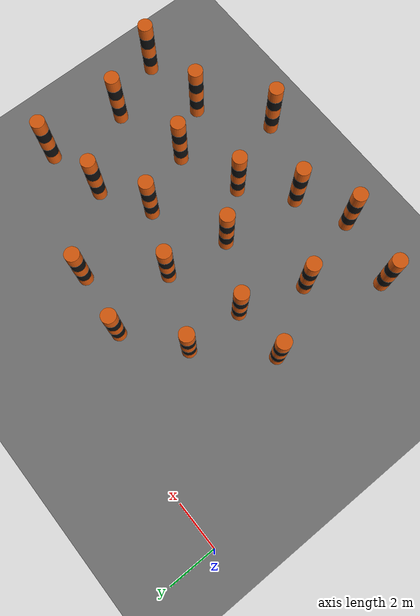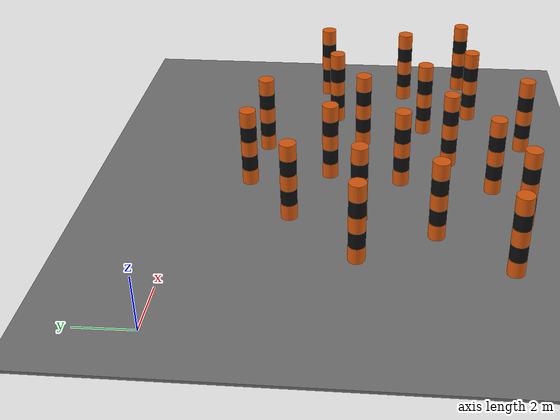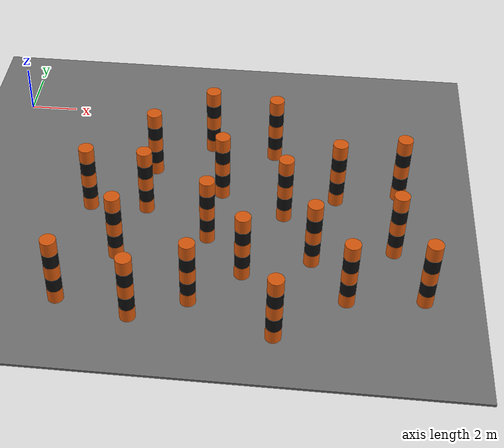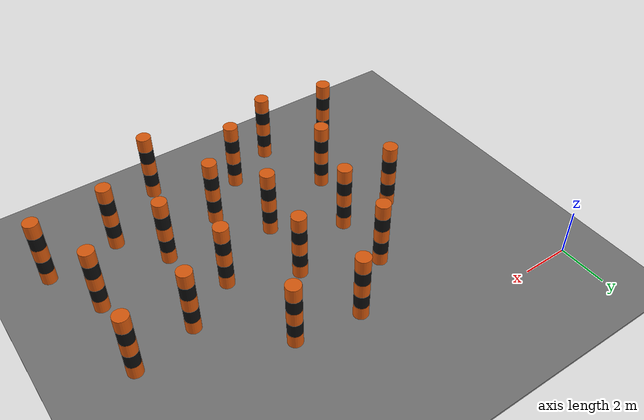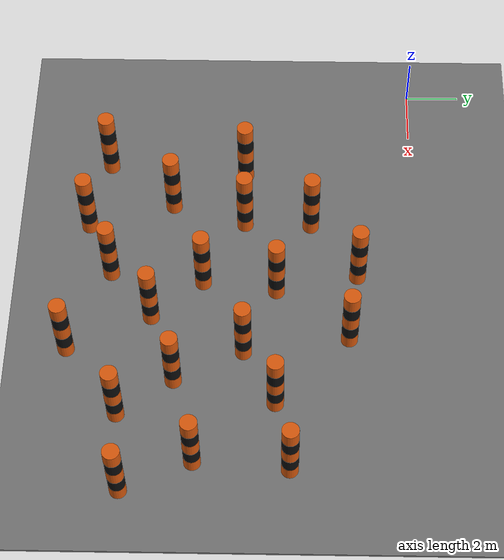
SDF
<sdf version="1.6">
 <world name="medium_forest_striped_poles_passable_0p10_per_m2">
  <model name="ground">
   <static>true</static>
   <pose>2 0 -0.05 0 0 0</pose>
   <link name="link">
    <collision name="collision">
     <geometry><box><size>44 37 0.1</size></box></geometry>
     <surface><friction><ode><mu>1.0</mu><mu2>1.0</mu2></ode></friction></surface>
    </collision>
    <visual name="visual">
     <geometry><box><size>44 37 0.1</size></box></geometry>
     <material>
      <ambient>0.45 0.45 0.45 1</ambient>
      <diffuse>0.45 0.45 0.45 1</diffuse>
      <specular>0.02 0.02 0.02 1</specular>
     </material>
    </visual>
   </link>
  </model>
  <model name="passable_striped_pole_001">
   <static>true</static>
   <pose>6.378 -12.090 0 0 0 0</pose>
   <link name="link">
    <collision name="collision">
     <pose>0 0 1.5 0 0 0</pose>
     <geometry><cylinder><radius>0.30</radius><length>3.0</length></cylinder></geometry>
     <surface>
      <contact><ode><kp>1000000</kp><kd>100</kd><max_vel>0.01</max_vel><min_depth>0.001</min_depth></ode></contact>
      <friction><ode><mu>1.0</mu><mu2>1.0</mu2></ode></friction>
     </surface>
    </collision>
    <visual name="band_1">
     <pose>0 0 0.3 0 0 0</pose>
     <geometry><cylinder><radius>0.30</radius><length>0.6</length></cylinder></geometry>
     <material>
      <ambient>0.85 0.35 0.05 1</ambient>
      <diffuse>0.85 0.35 0.05 1</diffuse>
      <specular>0.02 0.02 0.02 1</specular>
     </material>
    </visual>
    <visual name="band_2">
     <pose>0 0 0.9 0 0 0</pose>
     <geometry><cylinder><radius>0.30</radius><length>0.6</length></cylinder></geometry>
     <material>
      <ambient>0.05 0.05 0.05 1</ambient>
      <diffuse>0.05 0.05 0.05 1</diffuse>
      <specular>0.02 0.02 0.02 1</specular>
     </material>
    </visual>
    <visual name="band_3">
     <pose>0 0 1.5 0 0 0</pose>
     <geometry><cylinder><radius>0.30</radius><length>0.6</length></cylinder></geometry>
     <material>
      <ambient>0.85 0.35 0.05 1</ambient>
      <diffuse>0.85 0.35 0.05 1</diffuse>
      <specular>0.02 0.02 0.02 1</specular>
     </material>
    </visual>
    <visual name="band_4">
     <pose>0 0 2.1 0 0 0</pose>
     <geometry><cylinder><radius>0.30</radius><length>0.6</length></cylinder></geometry>
     <material>
      <ambient>0.05 0.05 0.05 1</ambient>
      <diffuse>0.05 0.05 0.05 1</diffuse>
      <specular>0.02 0.02 0.02 1</specular>
     </material>
    </visual>
    <visual name="band_5">
     <pose>0 0 2.7 0 0 0</pose>
     <geometry><cylinder><radius>0.30</radius><length>0.6</length></cylinder></geometry>
     <material>
      <ambient>0.85 0.35 0.05 1</ambient>
      <diffuse>0.85 0.35 0.05 1</diffuse>
      <specular>0.02 0.02 0.02 1</specular>
     </material>
    </visual>
   </link>
  </model>
  <model name="passable_striped_pole_004">
   <static>true</static>
   <pose>14.314 -10.579 0 0 0 0</pose>
   <link name="link">
    <collision name="collision">
     <pose>0 0 1.5 0 0 0</pose>
     <geometry><cylinder><radius>0.30</radius><length>3.0</length></cylinder></geometry>
     <surface>
      <contact><ode><kp>1000000</kp><kd>100</kd><max_vel>0.01</max_vel><min_depth>0.001</min_depth></ode></contact>
      <friction><ode><mu>1.0</mu><mu2>1.0</mu2></ode></friction>
     </surface>
    </collision>
    <visual name="band_1">
     <pose>0 0 0.3 0 0 0</pose>
     <geometry><cylinder><radius>0.30</radius><length>0.6</length></cylinder></geometry>
     <material>
      <ambient>0.85 0.35 0.05 1</ambient>
      <diffuse>0.85 0.35 0.05 1</diffuse>
      <specular>0.02 0.02 0.02 1</specular>
     </material>
    </visual>
    <visual name="band_2">
     <pose>0 0 0.9 0 0 0</pose>
     <geometry><cylinder><radius>0.30</radius><length>0.6</length></cylinder></geometry>
     <material>
      <ambient>0.05 0.05 0.05 1</ambient>
      <diffuse>0.05 0.05 0.05 1</diffuse>
      <specular>0.02 0.02 0.02 1</specular>
     </material>
    </visual>
    <visual name="band_3">
     <pose>0 0 1.5 0 0 0</pose>
     <geometry><cylinder><radius>0.30</radius><length>0.6</length></cylinder></geometry>
     <material>
      <ambient>0.85 0.35 0.05 1</ambient>
      <diffuse>0.85 0.35 0.05 1</diffuse>
      <specular>0.02 0.02 0.02 1</specular>
     </material>
    </visual>
    <visual name="band_4">
     <pose>0 0 2.1 0 0 0</pose>
     <geometry><cylinder><radius>0.30</radius><length>0.6</length></cylinder></geometry>
     <material>
      <ambient>0.05 0.05 0.05 1</ambient>
      <diffuse>0.05 0.05 0.05 1</diffuse>
      <specular>0.02 0.02 0.02 1</specular>
     </material>
    </visual>
    <visual name="band_5">
     <pose>0 0 2.7 0 0 0</pose>
     <geometry><cylinder><radius>0.30</radius><length>0.6</length></cylinder></geometry>
     <material>
      <ambient>0.85 0.35 0.05 1</ambient>
      <diffuse>0.85 0.35 0.05 1</diffuse>
      <specular>0.02 0.02 0.02 1</specular>
     </material>
    </visual>
   </link>
  </model>
  <model name="passable_striped_pole_009">
   <static>true</static>
   <pose>11.716 -12.541 0 0 0 0</pose>
   <link name="link">
    <collision name="collision">
     <pose>0 0 1.5 0 0 0</pose>
     <geometry><cylinder><radius>0.30</radius><length>3.0</length></cylinder></geometry>
     <surface>
      <contact><ode><kp>1000000</kp><kd>100</kd><max_vel>0.01</max_vel><min_depth>0.001</min_depth></ode></contact>
      <friction><ode><mu>1.0</mu><mu2>1.0</mu2></ode></friction>
     </surface>
    </collision>
    <visual name="band_1">
     <pose>0 0 0.3 0 0 0</pose>
     <geometry><cylinder><radius>0.30</radius><length>0.6</length></cylinder></geometry>
     <material>
      <ambient>0.85 0.35 0.05 1</ambient>
      <diffuse>0.85 0.35 0.05 1</diffuse>
      <specular>0.02 0.02 0.02 1</specular>
     </material>
    </visual>
    <visual name="band_2">
     <pose>0 0 0.9 0 0 0</pose>
     <geometry><cylinder><radius>0.30</radius><length>0.6</length></cylinder></geometry>
     <material>
      <ambient>0.05 0.05 0.05 1</ambient>
      <diffuse>0.05 0.05 0.05 1</diffuse>
      <specular>0.02 0.02 0.02 1</specular>
     </material>
    </visual>
    <visual name="band_3">
     <pose>0 0 1.5 0 0 0</pose>
     <geometry><cylinder><radius>0.30</radius><length>0.6</length></cylinder></geometry>
     <material>
      <ambient>0.85 0.35 0.05 1</ambient>
      <diffuse>0.85 0.35 0.05 1</diffuse>
      <specular>0.02 0.02 0.02 1</specular>
     </material>
    </visual>
    <visual name="band_4">
     <pose>0 0 2.1 0 0 0</pose>
     <geometry><cylinder><radius>0.30</radius><length>0.6</length></cylinder></geometry>
     <material>
      <ambient>0.05 0.05 0.05 1</ambient>
      <diffuse>0.05 0.05 0.05 1</diffuse>
      <specular>0.02 0.02 0.02 1</specular>
     </material>
    </visual>
    <visual name="band_5">
     <pose>0 0 2.7 0 0 0</pose>
     <geometry><cylinder><radius>0.30</radius><length>0.6</length></cylinder></geometry>
     <material>
      <ambient>0.85 0.35 0.05 1</ambient>
      <diffuse>0.85 0.35 0.05 1</diffuse>
      <specular>0.02 0.02 0.02 1</specular>
     </material>
    </visual>
   </link>
  </model>
  <model name="passable_striped_pole_012">
   <static>true</static>
   <pose>16.356 -4.487 0 0 0 0</pose>
   <link name="link">
    <collision name="collision">
     <pose>0 0 1.5 0 0 0</pose>
     <geometry><cylinder><radius>0.30</radius><length>3.0</length></cylinder></geometry>
     <surface>
      <contact><ode><kp>1000000</kp><kd>100</kd><max_vel>0.01</max_vel><min_depth>0.001</min_depth></ode></contact>
      <friction><ode><mu>1.0</mu><mu2>1.0</mu2></ode></friction>
     </surface>
    </collision>
    <visual name="band_1">
     <pose>0 0 0.3 0 0 0</pose>
     <geometry><cylinder><radius>0.30</radius><length>0.6</length></cylinder></geometry>
     <material>
      <ambient>0.85 0.35 0.05 1</ambient>
      <diffuse>0.85 0.35 0.05 1</diffuse>
      <specular>0.02 0.02 0.02 1</specular>
     </material>
    </visual>
    <visual name="band_2">
     <pose>0 0 0.9 0 0 0</pose>
     <geometry><cylinder><radius>0.30</radius><length>0.6</length></cylinder></geometry>
     <material>
      <ambient>0.05 0.05 0.05 1</ambient>
      <diffuse>0.05 0.05 0.05 1</diffuse>
      <specular>0.02 0.02 0.02 1</specular>
     </material>
    </visual>
    <visual name="band_3">
     <pose>0 0 1.5 0 0 0</pose>
     <geometry><cylinder><radius>0.30</radius><length>0.6</length></cylinder></geometry>
     <material>
      <ambient>0.85 0.35 0.05 1</ambient>
      <diffuse>0.85 0.35 0.05 1</diffuse>
      <specular>0.02 0.02 0.02 1</specular>
     </material>
    </visual>
    <visual name="band_4">
     <pose>0 0 2.1 0 0 0</pose>
     <geometry><cylinder><radius>0.30</radius><length>0.6</length></cylinder></geometry>
     <material>
      <ambient>0.05 0.05 0.05 1</ambient>
      <diffuse>0.05 0.05 0.05 1</diffuse>
      <specular>0.02 0.02 0.02 1</specular>
     </material>
    </visual>
    <visual name="band_5">
     <pose>0 0 2.7 0 0 0</pose>
     <geometry><cylinder><radius>0.30</radius><length>0.6</length></cylinder></geometry>
     <material>
      <ambient>0.85 0.35 0.05 1</ambient>
      <diffuse>0.85 0.35 0.05 1</diffuse>
      <specular>0.02 0.02 0.02 1</specular>
     </material>
    </visual>
   </link>
  </model>
  <model name="passable_striped_pole_019">
   <static>true</static>
   <pose>6.260 -3.798 0 0 0 0</pose>
   <link name="link">
    <collision name="collision">
     <pose>0 0 1.5 0 0 0</pose>
     <geometry><cylinder><radius>0.30</radius><length>3.0</length></cylinder></geometry>
     <surface>
      <contact><ode><kp>1000000</kp><kd>100</kd><max_vel>0.01</max_vel><min_depth>0.001</min_depth></ode></contact>
      <friction><ode><mu>1.0</mu><mu2>1.0</mu2></ode></friction>
     </surface>
    </collision>
    <visual name="band_1">
     <pose>0 0 0.3 0 0 0</pose>
     <geometry><cylinder><radius>0.30</radius><length>0.6</length></cylinder></geometry>
     <material>
      <ambient>0.85 0.35 0.05 1</ambient>
      <diffuse>0.85 0.35 0.05 1</diffuse>
      <specular>0.02 0.02 0.02 1</specular>
     </material>
    </visual>
    <visual name="band_2">
     <pose>0 0 0.9 0 0 0</pose>
     <geometry><cylinder><radius>0.30</radius><length>0.6</length></cylinder></geometry>
     <material>
      <ambient>0.05 0.05 0.05 1</ambient>
      <diffuse>0.05 0.05 0.05 1</diffuse>
      <specular>0.02 0.02 0.02 1</specular>
     </material>
    </visual>
    <visual name="band_3">
     <pose>0 0 1.5 0 0 0</pose>
     <geometry><cylinder><radius>0.30</radius><length>0.6</length></cylinder></geometry>
     <material>
      <ambient>0.85 0.35 0.05 1</ambient>
      <diffuse>0.85 0.35 0.05 1</diffuse>
      <specular>0.02 0.02 0.02 1</specular>
     </material>
    </visual>
    <visual name="band_4">
     <pose>0 0 2.1 0 0 0</pose>
     <geometry><cylinder><radius>0.30</radius><length>0.6</length></cylinder></geometry>
     <material>
      <ambient>0.05 0.05 0.05 1</ambient>
      <diffuse>0.05 0.05 0.05 1</diffuse>
      <specular>0.02 0.02 0.02 1</specular>
     </material>
    </visual>
    <visual name="band_5">
     <pose>0 0 2.7 0 0 0</pose>
     <geometry><cylinder><radius>0.30</radius><length>0.6</length></cylinder></geometry>
     <material>
      <ambient>0.85 0.35 0.05 1</ambient>
      <diffuse>0.85 0.35 0.05 1</diffuse>
      <specular>0.02 0.02 0.02 1</specular>
     </material>
    </visual>
   </link>
  </model>
  <model name="passable_striped_pole_027">
   <static>true</static>
   <pose>13.818 -5.022 0 0 0 0</pose>
   <link name="link">
    <collision name="collision">
     <pose>0 0 1.5 0 0 0</pose>
     <geometry><cylinder><radius>0.30</radius><length>3.0</length></cylinder></geometry>
     <surface>
      <contact><ode><kp>1000000</kp><kd>100</kd><max_vel>0.01</max_vel><min_depth>0.001</min_depth></ode></contact>
      <friction><ode><mu>1.0</mu><mu2>1.0</mu2></ode></friction>
     </surface>
    </collision>
    <visual name="band_1">
     <pose>0 0 0.3 0 0 0</pose>
     <geometry><cylinder><radius>0.30</radius><length>0.6</length></cylinder></geometry>
     <material>
      <ambient>0.85 0.35 0.05 1</ambient>
      <diffuse>0.85 0.35 0.05 1</diffuse>
      <specular>0.02 0.02 0.02 1</specular>
     </material>
    </visual>
    <visual name="band_2">
     <pose>0 0 0.9 0 0 0</pose>
     <geometry><cylinder><radius>0.30</radius><length>0.6</length></cylinder></geometry>
     <material>
      <ambient>0.05 0.05 0.05 1</ambient>
      <diffuse>0.05 0.05 0.05 1</diffuse>
      <specular>0.02 0.02 0.02 1</specular>
     </material>
    </visual>
    <visual name="band_3">
     <pose>0 0 1.5 0 0 0</pose>
     <geometry><cylinder><radius>0.30</radius><length>0.6</length></cylinder></geometry>
     <material>
      <ambient>0.85 0.35 0.05 1</ambient>
      <diffuse>0.85 0.35 0.05 1</diffuse>
      <specular>0.02 0.02 0.02 1</specular>
     </material>
    </visual>
    <visual name="band_4">
     <pose>0 0 2.1 0 0 0</pose>
     <geometry><cylinder><radius>0.30</radius><length>0.6</length></cylinder></geometry>
     <material>
      <ambient>0.05 0.05 0.05 1</ambient>
      <diffuse>0.05 0.05 0.05 1</diffuse>
      <specular>0.02 0.02 0.02 1</specular>
     </material>
    </visual>
    <visual name="band_5">
     <pose>0 0 2.7 0 0 0</pose>
     <geometry><cylinder><radius>0.30</radius><length>0.6</length></cylinder></geometry>
     <material>
      <ambient>0.85 0.35 0.05 1</ambient>
      <diffuse>0.85 0.35 0.05 1</diffuse>
      <specular>0.02 0.02 0.02 1</specular>
     </material>
    </visual>
   </link>
  </model>
  <model name="passable_striped_pole_029">
   <static>true</static>
   <pose>3.927 -6.289 0 0 0 0</pose>
   <link name="link">
    <collision name="collision">
     <pose>0 0 1.5 0 0 0</pose>
     <geometry><cylinder><radius>0.30</radius><length>3.0</length></cylinder></geometry>
     <surface>
      <contact><ode><kp>1000000</kp><kd>100</kd><max_vel>0.01</max_vel><min_depth>0.001</min_depth></ode></contact>
      <friction><ode><mu>1.0</mu><mu2>1.0</mu2></ode></friction>
     </surface>
    </collision>
    <visual name="band_1">
     <pose>0 0 0.3 0 0 0</pose>
     <geometry><cylinder><radius>0.30</radius><length>0.6</length></cylinder></geometry>
     <material>
      <ambient>0.85 0.35 0.05 1</ambient>
      <diffuse>0.85 0.35 0.05 1</diffuse>
      <specular>0.02 0.02 0.02 1</specular>
     </material>
    </visual>
    <visual name="band_2">
     <pose>0 0 0.9 0 0 0</pose>
     <geometry><cylinder><radius>0.30</radius><length>0.6</length></cylinder></geometry>
     <material>
      <ambient>0.05 0.05 0.05 1</ambient>
      <diffuse>0.05 0.05 0.05 1</diffuse>
      <specular>0.02 0.02 0.02 1</specular>
     </material>
    </visual>
    <visual name="band_3">
     <pose>0 0 1.5 0 0 0</pose>
     <geometry><cylinder><radius>0.30</radius><length>0.6</length></cylinder></geometry>
     <material>
      <ambient>0.85 0.35 0.05 1</ambient>
      <diffuse>0.85 0.35 0.05 1</diffuse>
      <specular>0.02 0.02 0.02 1</specular>
     </material>
    </visual>
    <visual name="band_4">
     <pose>0 0 2.1 0 0 0</pose>
     <geometry><cylinder><radius>0.30</radius><length>0.6</length></cylinder></geometry>
     <material>
      <ambient>0.05 0.05 0.05 1</ambient>
      <diffuse>0.05 0.05 0.05 1</diffuse>
      <specular>0.02 0.02 0.02 1</specular>
     </material>
    </visual>
    <visual name="band_5">
     <pose>0 0 2.7 0 0 0</pose>
     <geometry><cylinder><radius>0.30</radius><length>0.6</length></cylinder></geometry>
     <material>
      <ambient>0.85 0.35 0.05 1</ambient>
      <diffuse>0.85 0.35 0.05 1</diffuse>
      <specular>0.02 0.02 0.02 1</specular>
     </material>
    </visual>
   </link>
  </model>
  <model name="passable_striped_pole_032">
   <static>true</static>
   <pose>11.171 -2.399 0 0 0 0</pose>
   <link name="link">
    <collision name="collision">
     <pose>0 0 1.5 0 0 0</pose>
     <geometry><cylinder><radius>0.30</radius><length>3.0</length></cylinder></geometry>
     <surface>
      <contact><ode><kp>1000000</kp><kd>100</kd><max_vel>0.01</max_vel><min_depth>0.001</min_depth></ode></contact>
      <friction><ode><mu>1.0</mu><mu2>1.0</mu2></ode></friction>
     </surface>
    </collision>
    <visual name="band_1">
     <pose>0 0 0.3 0 0 0</pose>
     <geometry><cylinder><radius>0.30</radius><length>0.6</length></cylinder></geometry>
     <material>
      <ambient>0.85 0.35 0.05 1</ambient>
      <diffuse>0.85 0.35 0.05 1</diffuse>
      <specular>0.02 0.02 0.02 1</specular>
     </material>
    </visual>
    <visual name="band_2">
     <pose>0 0 0.9 0 0 0</pose>
     <geometry><cylinder><radius>0.30</radius><length>0.6</length></cylinder></geometry>
     <material>
      <ambient>0.05 0.05 0.05 1</ambient>
      <diffuse>0.05 0.05 0.05 1</diffuse>
      <specular>0.02 0.02 0.02 1</specular>
     </material>
    </visual>
    <visual name="band_3">
     <pose>0 0 1.5 0 0 0</pose>
     <geometry><cylinder><radius>0.30</radius><length>0.6</length></cylinder></geometry>
     <material>
      <ambient>0.85 0.35 0.05 1</ambient>
      <diffuse>0.85 0.35 0.05 1</diffuse>
      <specular>0.02 0.02 0.02 1</specular>
     </material>
    </visual>
    <visual name="band_4">
     <pose>0 0 2.1 0 0 0</pose>
     <geometry><cylinder><radius>0.30</radius><length>0.6</length></cylinder></geometry>
     <material>
      <ambient>0.05 0.05 0.05 1</ambient>
      <diffuse>0.05 0.05 0.05 1</diffuse>
      <specular>0.02 0.02 0.02 1</specular>
     </material>
    </visual>
    <visual name="band_5">
     <pose>0 0 2.7 0 0 0</pose>
     <geometry><cylinder><radius>0.30</radius><length>0.6</length></cylinder></geometry>
     <material>
      <ambient>0.85 0.35 0.05 1</ambient>
      <diffuse>0.85 0.35 0.05 1</diffuse>
      <specular>0.02 0.02 0.02 1</specular>
     </material>
    </visual>
   </link>
  </model>
  <model name="passable_striped_pole_038">
   <static>true</static>
   <pose>5.422 -8.971 0 0 0 0</pose>
   <link name="link">
    <collision name="collision">
     <pose>0 0 1.5 0 0 0</pose>
     <geometry><cylinder><radius>0.30</radius><length>3.0</length></cylinder></geometry>
     <surface>
      <contact><ode><kp>1000000</kp><kd>100</kd><max_vel>0.01</max_vel><min_depth>0.001</min_depth></ode></contact>
      <friction><ode><mu>1.0</mu><mu2>1.0</mu2></ode></friction>
     </surface>
    </collision>
    <visual name="band_1">
     <pose>0 0 0.3 0 0 0</pose>
     <geometry><cylinder><radius>0.30</radius><length>0.6</length></cylinder></geometry>
     <material>
      <ambient>0.85 0.35 0.05 1</ambient>
      <diffuse>0.85 0.35 0.05 1</diffuse>
      <specular>0.02 0.02 0.02 1</specular>
     </material>
    </visual>
    <visual name="band_2">
     <pose>0 0 0.9 0 0 0</pose>
     <geometry><cylinder><radius>0.30</radius><length>0.6</length></cylinder></geometry>
     <material>
      <ambient>0.05 0.05 0.05 1</ambient>
      <diffuse>0.05 0.05 0.05 1</diffuse>
      <specular>0.02 0.02 0.02 1</specular>
     </material>
    </visual>
    <visual name="band_3">
     <pose>0 0 1.5 0 0 0</pose>
     <geometry><cylinder><radius>0.30</radius><length>0.6</length></cylinder></geometry>
     <material>
      <ambient>0.85 0.35 0.05 1</ambient>
      <diffuse>0.85 0.35 0.05 1</diffuse>
      <specular>0.02 0.02 0.02 1</specular>
     </material>
    </visual>
    <visual name="band_4">
     <pose>0 0 2.1 0 0 0</pose>
     <geometry><cylinder><radius>0.30</radius><length>0.6</length></cylinder></geometry>
     <material>
      <ambient>0.05 0.05 0.05 1</ambient>
      <diffuse>0.05 0.05 0.05 1</diffuse>
      <specular>0.02 0.02 0.02 1</specular>
     </material>
    </visual>
    <visual name="band_5">
     <pose>0 0 2.7 0 0 0</pose>
     <geometry><cylinder><radius>0.30</radius><length>0.6</length></cylinder></geometry>
     <material>
      <ambient>0.85 0.35 0.05 1</ambient>
      <diffuse>0.85 0.35 0.05 1</diffuse>
      <specular>0.02 0.02 0.02 1</specular>
     </material>
    </visual>
   </link>
  </model>
  <model name="passable_striped_pole_044">
   <static>true</static>
   <pose>10.347 -9.567 0 0 0 0</pose>
   <link name="link">
    <collision name="collision">
     <pose>0 0 1.5 0 0 0</pose>
     <geometry><cylinder><radius>0.30</radius><length>3.0</length></cylinder></geometry>
     <surface>
      <contact><ode><kp>1000000</kp><kd>100</kd><max_vel>0.01</max_vel><min_depth>0.001</min_depth></ode></contact>
      <friction><ode><mu>1.0</mu><mu2>1.0</mu2></ode></friction>
     </surface>
    </collision>
    <visual name="band_1">
     <pose>0 0 0.3 0 0 0</pose>
     <geometry><cylinder><radius>0.30</radius><length>0.6</length></cylinder></geometry>
     <material>
      <ambient>0.85 0.35 0.05 1</ambient>
      <diffuse>0.85 0.35 0.05 1</diffuse>
      <specular>0.02 0.02 0.02 1</specular>
     </material>
    </visual>
    <visual name="band_2">
     <pose>0 0 0.9 0 0 0</pose>
     <geometry><cylinder><radius>0.30</radius><length>0.6</length></cylinder></geometry>
     <material>
      <ambient>0.05 0.05 0.05 1</ambient>
      <diffuse>0.05 0.05 0.05 1</diffuse>
      <specular>0.02 0.02 0.02 1</specular>
     </material>
    </visual>
    <visual name="band_3">
     <pose>0 0 1.5 0 0 0</pose>
     <geometry><cylinder><radius>0.30</radius><length>0.6</length></cylinder></geometry>
     <material>
      <ambient>0.85 0.35 0.05 1</ambient>
      <diffuse>0.85 0.35 0.05 1</diffuse>
      <specular>0.02 0.02 0.02 1</specular>
     </material>
    </visual>
    <visual name="band_4">
     <pose>0 0 2.1 0 0 0</pose>
     <geometry><cylinder><radius>0.30</radius><length>0.6</length></cylinder></geometry>
     <material>
      <ambient>0.05 0.05 0.05 1</ambient>
      <diffuse>0.05 0.05 0.05 1</diffuse>
      <specular>0.02 0.02 0.02 1</specular>
     </material>
    </visual>
    <visual name="band_5">
     <pose>0 0 2.7 0 0 0</pose>
     <geometry><cylinder><radius>0.30</radius><length>0.6</length></cylinder></geometry>
     <material>
      <ambient>0.85 0.35 0.05 1</ambient>
      <diffuse>0.85 0.35 0.05 1</diffuse>
      <specular>0.02 0.02 0.02 1</specular>
     </material>
    </visual>
   </link>
  </model>
  <model name="passable_striped_pole_049">
   <static>true</static>
   <pose>17.203 -10.299 0 0 0 0</pose>
   <link name="link">
    <collision name="collision">
     <pose>0 0 1.5 0 0 0</pose>
     <geometry><cylinder><radius>0.30</radius><length>3.0</length></cylinder></geometry>
     <surface>
      <contact><ode><kp>1000000</kp><kd>100</kd><max_vel>0.01</max_vel><min_depth>0.001</min_depth></ode></contact>
      <friction><ode><mu>1.0</mu><mu2>1.0</mu2></ode></friction>
     </surface>
    </collision>
    <visual name="band_1">
     <pose>0 0 0.3 0 0 0</pose>
     <geometry><cylinder><radius>0.30</radius><length>0.6</length></cylinder></geometry>
     <material>
      <ambient>0.85 0.35 0.05 1</ambient>
      <diffuse>0.85 0.35 0.05 1</diffuse>
      <specular>0.02 0.02 0.02 1</specular>
     </material>
    </visual>
    <visual name="band_2">
     <pose>0 0 0.9 0 0 0</pose>
     <geometry><cylinder><radius>0.30</radius><length>0.6</length></cylinder></geometry>
     <material>
      <ambient>0.05 0.05 0.05 1</ambient>
      <diffuse>0.05 0.05 0.05 1</diffuse>
      <specular>0.02 0.02 0.02 1</specular>
     </material>
    </visual>
    <visual name="band_3">
     <pose>0 0 1.5 0 0 0</pose>
     <geometry><cylinder><radius>0.30</radius><length>0.6</length></cylinder></geometry>
     <material>
      <ambient>0.85 0.35 0.05 1</ambient>
      <diffuse>0.85 0.35 0.05 1</diffuse>
      <specular>0.02 0.02 0.02 1</specular>
     </material>
    </visual>
    <visual name="band_4">
     <pose>0 0 2.1 0 0 0</pose>
     <geometry><cylinder><radius>0.30</radius><length>0.6</length></cylinder></geometry>
     <material>
      <ambient>0.05 0.05 0.05 1</ambient>
      <diffuse>0.05 0.05 0.05 1</diffuse>
      <specular>0.02 0.02 0.02 1</specular>
     </material>
    </visual>
    <visual name="band_5">
     <pose>0 0 2.7 0 0 0</pose>
     <geometry><cylinder><radius>0.30</radius><length>0.6</length></cylinder></geometry>
     <material>
      <ambient>0.85 0.35 0.05 1</ambient>
      <diffuse>0.85 0.35 0.05 1</diffuse>
      <specular>0.02 0.02 0.02 1</specular>
     </material>
    </visual>
   </link>
  </model>
  <model name="passable_striped_pole_051">
   <static>true</static>
   <pose>3.580 -11.466 0 0 0 0</pose>
   <link name="link">
    <collision name="collision">
     <pose>0 0 1.5 0 0 0</pose>
     <geometry><cylinder><radius>0.30</radius><length>3.0</length></cylinder></geometry>
     <surface>
      <contact><ode><kp>1000000</kp><kd>100</kd><max_vel>0.01</max_vel><min_depth>0.001</min_depth></ode></contact>
      <friction><ode><mu>1.0</mu><mu2>1.0</mu2></ode></friction>
     </surface>
    </collision>
    <visual name="band_1">
     <pose>0 0 0.3 0 0 0</pose>
     <geometry><cylinder><radius>0.30</radius><length>0.6</length></cylinder></geometry>
     <material>
      <ambient>0.85 0.35 0.05 1</ambient>
      <diffuse>0.85 0.35 0.05 1</diffuse>
      <specular>0.02 0.02 0.02 1</specular>
     </material>
    </visual>
    <visual name="band_2">
     <pose>0 0 0.9 0 0 0</pose>
     <geometry><cylinder><radius>0.30</radius><length>0.6</length></cylinder></geometry>
     <material>
      <ambient>0.05 0.05 0.05 1</ambient>
      <diffuse>0.05 0.05 0.05 1</diffuse>
      <specular>0.02 0.02 0.02 1</specular>
     </material>
    </visual>
    <visual name="band_3">
     <pose>0 0 1.5 0 0 0</pose>
     <geometry><cylinder><radius>0.30</radius><length>0.6</length></cylinder></geometry>
     <material>
      <ambient>0.85 0.35 0.05 1</ambient>
      <diffuse>0.85 0.35 0.05 1</diffuse>
      <specular>0.02 0.02 0.02 1</specular>
     </material>
    </visual>
    <visual name="band_4">
     <pose>0 0 2.1 0 0 0</pose>
     <geometry><cylinder><radius>0.30</radius><length>0.6</length></cylinder></geometry>
     <material>
      <ambient>0.05 0.05 0.05 1</ambient>
      <diffuse>0.05 0.05 0.05 1</diffuse>
      <specular>0.02 0.02 0.02 1</specular>
     </material>
    </visual>
    <visual name="band_5">
     <pose>0 0 2.7 0 0 0</pose>
     <geometry><cylinder><radius>0.30</radius><length>0.6</length></cylinder></geometry>
     <material>
      <ambient>0.85 0.35 0.05 1</ambient>
      <diffuse>0.85 0.35 0.05 1</diffuse>
      <specular>0.02 0.02 0.02 1</specular>
     </material>
    </visual>
   </link>
  </model>
  <model name="passable_striped_pole_052">
   <static>true</static>
   <pose>12.949 -8.642 0 0 0 0</pose>
   <link name="link">
    <collision name="collision">
     <pose>0 0 1.5 0 0 0</pose>
     <geometry><cylinder><radius>0.30</radius><length>3.0</length></cylinder></geometry>
     <surface>
      <contact><ode><kp>1000000</kp><kd>100</kd><max_vel>0.01</max_vel><min_depth>0.001</min_depth></ode></contact>
      <friction><ode><mu>1.0</mu><mu2>1.0</mu2></ode></friction>
     </surface>
    </collision>
    <visual name="band_1">
     <pose>0 0 0.3 0 0 0</pose>
     <geometry><cylinder><radius>0.30</radius><length>0.6</length></cylinder></geometry>
     <material>
      <ambient>0.85 0.35 0.05 1</ambient>
      <diffuse>0.85 0.35 0.05 1</diffuse>
      <specular>0.02 0.02 0.02 1</specular>
     </material>
    </visual>
    <visual name="band_2">
     <pose>0 0 0.9 0 0 0</pose>
     <geometry><cylinder><radius>0.30</radius><length>0.6</length></cylinder></geometry>
     <material>
      <ambient>0.05 0.05 0.05 1</ambient>
      <diffuse>0.05 0.05 0.05 1</diffuse>
      <specular>0.02 0.02 0.02 1</specular>
     </material>
    </visual>
    <visual name="band_3">
     <pose>0 0 1.5 0 0 0</pose>
     <geometry><cylinder><radius>0.30</radius><length>0.6</length></cylinder></geometry>
     <material>
      <ambient>0.85 0.35 0.05 1</ambient>
      <diffuse>0.85 0.35 0.05 1</diffuse>
      <specular>0.02 0.02 0.02 1</specular>
     </material>
    </visual>
    <visual name="band_4">
     <pose>0 0 2.1 0 0 0</pose>
     <geometry><cylinder><radius>0.30</radius><length>0.6</length></cylinder></geometry>
     <material>
      <ambient>0.05 0.05 0.05 1</ambient>
      <diffuse>0.05 0.05 0.05 1</diffuse>
      <specular>0.02 0.02 0.02 1</specular>
     </material>
    </visual>
    <visual name="band_5">
     <pose>0 0 2.7 0 0 0</pose>
     <geometry><cylinder><radius>0.30</radius><length>0.6</length></cylinder></geometry>
     <material>
      <ambient>0.85 0.35 0.05 1</ambient>
      <diffuse>0.85 0.35 0.05 1</diffuse>
      <specular>0.02 0.02 0.02 1</specular>
     </material>
    </visual>
   </link>
  </model>
  <model name="passable_striped_pole_059">
   <static>true</static>
   <pose>8.833 -7.732 0 0 0 0</pose>
   <link name="link">
    <collision name="collision">
     <pose>0 0 1.5 0 0 0</pose>
     <geometry><cylinder><radius>0.30</radius><length>3.0</length></cylinder></geometry>
     <surface>
      <contact><ode><kp>1000000</kp><kd>100</kd><max_vel>0.01</max_vel><min_depth>0.001</min_depth></ode></contact>
      <friction><ode><mu>1.0</mu><mu2>1.0</mu2></ode></friction>
     </surface>
    </collision>
    <visual name="band_1">
     <pose>0 0 0.3 0 0 0</pose>
     <geometry><cylinder><radius>0.30</radius><length>0.6</length></cylinder></geometry>
     <material>
      <ambient>0.85 0.35 0.05 1</ambient>
      <diffuse>0.85 0.35 0.05 1</diffuse>
      <specular>0.02 0.02 0.02 1</specular>
     </material>
    </visual>
    <visual name="band_2">
     <pose>0 0 0.9 0 0 0</pose>
     <geometry><cylinder><radius>0.30</radius><length>0.6</length></cylinder></geometry>
     <material>
      <ambient>0.05 0.05 0.05 1</ambient>
      <diffuse>0.05 0.05 0.05 1</diffuse>
      <specular>0.02 0.02 0.02 1</specular>
     </material>
    </visual>
    <visual name="band_3">
     <pose>0 0 1.5 0 0 0</pose>
     <geometry><cylinder><radius>0.30</radius><length>0.6</length></cylinder></geometry>
     <material>
      <ambient>0.85 0.35 0.05 1</ambient>
      <diffuse>0.85 0.35 0.05 1</diffuse>
      <specular>0.02 0.02 0.02 1</specular>
     </material>
    </visual>
    <visual name="band_4">
     <pose>0 0 2.1 0 0 0</pose>
     <geometry><cylinder><radius>0.30</radius><length>0.6</length></cylinder></geometry>
     <material>
      <ambient>0.05 0.05 0.05 1</ambient>
      <diffuse>0.05 0.05 0.05 1</diffuse>
      <specular>0.02 0.02 0.02 1</specular>
     </material>
    </visual>
    <visual name="band_5">
     <pose>0 0 2.7 0 0 0</pose>
     <geometry><cylinder><radius>0.30</radius><length>0.6</length></cylinder></geometry>
     <material>
      <ambient>0.85 0.35 0.05 1</ambient>
      <diffuse>0.85 0.35 0.05 1</diffuse>
      <specular>0.02 0.02 0.02 1</specular>
     </material>
    </visual>
   </link>
  </model>
  <model name="passable_striped_pole_060">
   <static>true</static>
   <pose>6.215 -6.259 0 0 0 0</pose>
   <link name="link">
    <collision name="collision">
     <pose>0 0 1.5 0 0 0</pose>
     <geometry><cylinder><radius>0.30</radius><length>3.0</length></cylinder></geometry>
     <surface>
      <contact><ode><kp>1000000</kp><kd>100</kd><max_vel>0.01</max_vel><min_depth>0.001</min_depth></ode></contact>
      <friction><ode><mu>1.0</mu><mu2>1.0</mu2></ode></friction>
     </surface>
    </collision>
    <visual name="band_1">
     <pose>0 0 0.3 0 0 0</pose>
     <geometry><cylinder><radius>0.30</radius><length>0.6</length></cylinder></geometry>
     <material>
      <ambient>0.85 0.35 0.05 1</ambient>
      <diffuse>0.85 0.35 0.05 1</diffuse>
      <specular>0.02 0.02 0.02 1</specular>
     </material>
    </visual>
    <visual name="band_2">
     <pose>0 0 0.9 0 0 0</pose>
     <geometry><cylinder><radius>0.30</radius><length>0.6</length></cylinder></geometry>
     <material>
      <ambient>0.05 0.05 0.05 1</ambient>
      <diffuse>0.05 0.05 0.05 1</diffuse>
      <specular>0.02 0.02 0.02 1</specular>
     </material>
    </visual>
    <visual name="band_3">
     <pose>0 0 1.5 0 0 0</pose>
     <geometry><cylinder><radius>0.30</radius><length>0.6</length></cylinder></geometry>
     <material>
      <ambient>0.85 0.35 0.05 1</ambient>
      <diffuse>0.85 0.35 0.05 1</diffuse>
      <specular>0.02 0.02 0.02 1</specular>
     </material>
    </visual>
    <visual name="band_4">
     <pose>0 0 2.1 0 0 0</pose>
     <geometry><cylinder><radius>0.30</radius><length>0.6</length></cylinder></geometry>
     <material>
      <ambient>0.05 0.05 0.05 1</ambient>
      <diffuse>0.05 0.05 0.05 1</diffuse>
      <specular>0.02 0.02 0.02 1</specular>
     </material>
    </visual>
    <visual name="band_5">
     <pose>0 0 2.7 0 0 0</pose>
     <geometry><cylinder><radius>0.30</radius><length>0.6</length></cylinder></geometry>
     <material>
      <ambient>0.85 0.35 0.05 1</ambient>
      <diffuse>0.85 0.35 0.05 1</diffuse>
      <specular>0.02 0.02 0.02 1</specular>
     </material>
    </visual>
   </link>
  </model>
  <model name="passable_striped_pole_062">
   <static>true</static>
   <pose>11.758 -6.190 0 0 0 0</pose>
   <link name="link">
    <collision name="collision">
     <pose>0 0 1.5 0 0 0</pose>
     <geometry><cylinder><radius>0.30</radius><length>3.0</length></cylinder></geometry>
     <surface>
      <contact><ode><kp>1000000</kp><kd>100</kd><max_vel>0.01</max_vel><min_depth>0.001</min_depth></ode></contact>
      <friction><ode><mu>1.0</mu><mu2>1.0</mu2></ode></friction>
     </surface>
    </collision>
    <visual name="band_1">
     <pose>0 0 0.3 0 0 0</pose>
     <geometry><cylinder><radius>0.30</radius><length>0.6</length></cylinder></geometry>
     <material>
      <ambient>0.85 0.35 0.05 1</ambient>
      <diffuse>0.85 0.35 0.05 1</diffuse>
      <specular>0.02 0.02 0.02 1</specular>
     </material>
    </visual>
    <visual name="band_2">
     <pose>0 0 0.9 0 0 0</pose>
     <geometry><cylinder><radius>0.30</radius><length>0.6</length></cylinder></geometry>
     <material>
      <ambient>0.05 0.05 0.05 1</ambient>
      <diffuse>0.05 0.05 0.05 1</diffuse>
      <specular>0.02 0.02 0.02 1</specular>
     </material>
    </visual>
    <visual name="band_3">
     <pose>0 0 1.5 0 0 0</pose>
     <geometry><cylinder><radius>0.30</radius><length>0.6</length></cylinder></geometry>
     <material>
      <ambient>0.85 0.35 0.05 1</ambient>
      <diffuse>0.85 0.35 0.05 1</diffuse>
      <specular>0.02 0.02 0.02 1</specular>
     </material>
    </visual>
    <visual name="band_4">
     <pose>0 0 2.1 0 0 0</pose>
     <geometry><cylinder><radius>0.30</radius><length>0.6</length></cylinder></geometry>
     <material>
      <ambient>0.05 0.05 0.05 1</ambient>
      <diffuse>0.05 0.05 0.05 1</diffuse>
      <specular>0.02 0.02 0.02 1</specular>
     </material>
    </visual>
    <visual name="band_5">
     <pose>0 0 2.7 0 0 0</pose>
     <geometry><cylinder><radius>0.30</radius><length>0.6</length></cylinder></geometry>
     <material>
      <ambient>0.85 0.35 0.05 1</ambient>
      <diffuse>0.85 0.35 0.05 1</diffuse>
      <specular>0.02 0.02 0.02 1</specular>
     </material>
    </visual>
   </link>
  </model>
  <model name="passable_striped_pole_065">
   <static>true</static>
   <pose>9.176 -5.046 0 0 0 0</pose>
   <link name="link">
    <collision name="collision">
     <pose>0 0 1.5 0 0 0</pose>
     <geometry><cylinder><radius>0.30</radius><length>3.0</length></cylinder></geometry>
     <surface>
      <contact><ode><kp>1000000</kp><kd>100</kd><max_vel>0.01</max_vel><min_depth>0.001</min_depth></ode></contact>
      <friction><ode><mu>1.0</mu><mu2>1.0</mu2></ode></friction>
     </surface>
    </collision>
    <visual name="band_1">
     <pose>0 0 0.3 0 0 0</pose>
     <geometry><cylinder><radius>0.30</radius><length>0.6</length></cylinder></geometry>
     <material>
      <ambient>0.85 0.35 0.05 1</ambient>
      <diffuse>0.85 0.35 0.05 1</diffuse>
      <specular>0.02 0.02 0.02 1</specular>
     </material>
    </visual>
    <visual name="band_2">
     <pose>0 0 0.9 0 0 0</pose>
     <geometry><cylinder><radius>0.30</radius><length>0.6</length></cylinder></geometry>
     <material>
      <ambient>0.05 0.05 0.05 1</ambient>
      <diffuse>0.05 0.05 0.05 1</diffuse>
      <specular>0.02 0.02 0.02 1</specular>
     </material>
    </visual>
    <visual name="band_3">
     <pose>0 0 1.5 0 0 0</pose>
     <geometry><cylinder><radius>0.30</radius><length>0.6</length></cylinder></geometry>
     <material>
      <ambient>0.85 0.35 0.05 1</ambient>
      <diffuse>0.85 0.35 0.05 1</diffuse>
      <specular>0.02 0.02 0.02 1</specular>
     </material>
    </visual>
    <visual name="band_4">
     <pose>0 0 2.1 0 0 0</pose>
     <geometry><cylinder><radius>0.30</radius><length>0.6</length></cylinder></geometry>
     <material>
      <ambient>0.05 0.05 0.05 1</ambient>
      <diffuse>0.05 0.05 0.05 1</diffuse>
      <specular>0.02 0.02 0.02 1</specular>
     </material>
    </visual>
    <visual name="band_5">
     <pose>0 0 2.7 0 0 0</pose>
     <geometry><cylinder><radius>0.30</radius><length>0.6</length></cylinder></geometry>
     <material>
      <ambient>0.85 0.35 0.05 1</ambient>
      <diffuse>0.85 0.35 0.05 1</diffuse>
      <specular>0.02 0.02 0.02 1</specular>
     </material>
    </visual>
   </link>
  </model>
  <model name="passable_striped_pole_069">
   <static>true</static>
   <pose>8.482 -11.133 0 0 0 0</pose>
   <link name="link">
    <collision name="collision">
     <pose>0 0 1.5 0 0 0</pose>
     <geometry><cylinder><radius>0.30</radius><length>3.0</length></cylinder></geometry>
     <surface>
      <contact><ode><kp>1000000</kp><kd>100</kd><max_vel>0.01</max_vel><min_depth>0.001</min_depth></ode></contact>
      <friction><ode><mu>1.0</mu><mu2>1.0</mu2></ode></friction>
     </surface>
    </collision>
    <visual name="band_1">
     <pose>0 0 0.3 0 0 0</pose>
     <geometry><cylinder><radius>0.30</radius><length>0.6</length></cylinder></geometry>
     <material>
      <ambient>0.85 0.35 0.05 1</ambient>
      <diffuse>0.85 0.35 0.05 1</diffuse>
      <specular>0.02 0.02 0.02 1</specular>
     </material>
    </visual>
    <visual name="band_2">
     <pose>0 0 0.9 0 0 0</pose>
     <geometry><cylinder><radius>0.30</radius><length>0.6</length></cylinder></geometry>
     <material>
      <ambient>0.05 0.05 0.05 1</ambient>
      <diffuse>0.05 0.05 0.05 1</diffuse>
      <specular>0.02 0.02 0.02 1</specular>
     </material>
    </visual>
    <visual name="band_3">
     <pose>0 0 1.5 0 0 0</pose>
     <geometry><cylinder><radius>0.30</radius><length>0.6</length></cylinder></geometry>
     <material>
      <ambient>0.85 0.35 0.05 1</ambient>
      <diffuse>0.85 0.35 0.05 1</diffuse>
      <specular>0.02 0.02 0.02 1</specular>
     </material>
    </visual>
    <visual name="band_4">
     <pose>0 0 2.1 0 0 0</pose>
     <geometry><cylinder><radius>0.30</radius><length>0.6</length></cylinder></geometry>
     <material>
      <ambient>0.05 0.05 0.05 1</ambient>
      <diffuse>0.05 0.05 0.05 1</diffuse>
      <specular>0.02 0.02 0.02 1</specular>
     </material>
    </visual>
    <visual name="band_5">
     <pose>0 0 2.7 0 0 0</pose>
     <geometry><cylinder><radius>0.30</radius><length>0.6</length></cylinder></geometry>
     <material>
      <ambient>0.85 0.35 0.05 1</ambient>
      <diffuse>0.85 0.35 0.05 1</diffuse>
      <specular>0.02 0.02 0.02 1</specular>
     </material>
    </visual>
   </link>
  </model>
  <model name="passable_striped_pole_071">
   <static>true</static>
   <pose>16.118 -7.836 0 0 0 0</pose>
   <link name="link">
    <collision name="collision">
     <pose>0 0 1.5 0 0 0</pose>
     <geometry><cylinder><radius>0.30</radius><length>3.0</length></cylinder></geometry>
     <surface>
      <contact><ode><kp>1000000</kp><kd>100</kd><max_vel>0.01</max_vel><min_depth>0.001</min_depth></ode></contact>
      <friction><ode><mu>1.0</mu><mu2>1.0</mu2></ode></friction>
     </surface>
    </collision>
    <visual name="band_1">
     <pose>0 0 0.3 0 0 0</pose>
     <geometry><cylinder><radius>0.30</radius><length>0.6</length></cylinder></geometry>
     <material>
      <ambient>0.85 0.35 0.05 1</ambient>
      <diffuse>0.85 0.35 0.05 1</diffuse>
      <specular>0.02 0.02 0.02 1</specular>
     </material>
    </visual>
    <visual name="band_2">
     <pose>0 0 0.9 0 0 0</pose>
     <geometry><cylinder><radius>0.30</radius><length>0.6</length></cylinder></geometry>
     <material>
      <ambient>0.05 0.05 0.05 1</ambient>
      <diffuse>0.05 0.05 0.05 1</diffuse>
      <specular>0.02 0.02 0.02 1</specular>
     </material>
    </visual>
    <visual name="band_3">
     <pose>0 0 1.5 0 0 0</pose>
     <geometry><cylinder><radius>0.30</radius><length>0.6</length></cylinder></geometry>
     <material>
      <ambient>0.85 0.35 0.05 1</ambient>
      <diffuse>0.85 0.35 0.05 1</diffuse>
      <specular>0.02 0.02 0.02 1</specular>
     </material>
    </visual>
    <visual name="band_4">
     <pose>0 0 2.1 0 0 0</pose>
     <geometry><cylinder><radius>0.30</radius><length>0.6</length></cylinder></geometry>
     <material>
      <ambient>0.05 0.05 0.05 1</ambient>
      <diffuse>0.05 0.05 0.05 1</diffuse>
      <specular>0.02 0.02 0.02 1</specular>
     </material>
    </visual>
    <visual name="band_5">
     <pose>0 0 2.7 0 0 0</pose>
     <geometry><cylinder><radius>0.30</radius><length>0.6</length></cylinder></geometry>
     <material>
      <ambient>0.85 0.35 0.05 1</ambient>
      <diffuse>0.85 0.35 0.05 1</diffuse>
      <specular>0.02 0.02 0.02 1</specular>
     </material>
    </visual>
   </link>
  </model>
  <model name="passable_striped_pole_074">
   <static>true</static>
   <pose>8.509 -2.074 0 0 0 0</pose>
   <link name="link">
    <collision name="collision">
     <pose>0 0 1.5 0 0 0</pose>
     <geometry><cylinder><radius>0.30</radius><length>3.0</length></cylinder></geometry>
     <surface>
      <contact><ode><kp>1000000</kp><kd>100</kd><max_vel>0.01</max_vel><min_depth>0.001</min_depth></ode></contact>
      <friction><ode><mu>1.0</mu><mu2>1.0</mu2></ode></friction>
     </surface>
    </collision>
    <visual name="band_1">
     <pose>0 0 0.3 0 0 0</pose>
     <geometry><cylinder><radius>0.30</radius><length>0.6</length></cylinder></geometry>
     <material>
      <ambient>0.85 0.35 0.05 1</ambient>
      <diffuse>0.85 0.35 0.05 1</diffuse>
      <specular>0.02 0.02 0.02 1</specular>
     </material>
    </visual>
    <visual name="band_2">
     <pose>0 0 0.9 0 0 0</pose>
     <geometry><cylinder><radius>0.30</radius><length>0.6</length></cylinder></geometry>
     <material>
      <ambient>0.05 0.05 0.05 1</ambient>
      <diffuse>0.05 0.05 0.05 1</diffuse>
      <specular>0.02 0.02 0.02 1</specular>
     </material>
    </visual>
    <visual name="band_3">
     <pose>0 0 1.5 0 0 0</pose>
     <geometry><cylinder><radius>0.30</radius><length>0.6</length></cylinder></geometry>
     <material>
      <ambient>0.85 0.35 0.05 1</ambient>
      <diffuse>0.85 0.35 0.05 1</diffuse>
      <specular>0.02 0.02 0.02 1</specular>
     </material>
    </visual>
    <visual name="band_4">
     <pose>0 0 2.1 0 0 0</pose>
     <geometry><cylinder><radius>0.30</radius><length>0.6</length></cylinder></geometry>
     <material>
      <ambient>0.05 0.05 0.05 1</ambient>
      <diffuse>0.05 0.05 0.05 1</diffuse>
      <specular>0.02 0.02 0.02 1</specular>
     </material>
    </visual>
    <visual name="band_5">
     <pose>0 0 2.7 0 0 0</pose>
     <geometry><cylinder><radius>0.30</radius><length>0.6</length></cylinder></geometry>
     <material>
      <ambient>0.85 0.35 0.05 1</ambient>
      <diffuse>0.85 0.35 0.05 1</diffuse>
      <specular>0.02 0.02 0.02 1</specular>
     </material>
    </visual>
   </link>
  </model>
 </world>
</sdf>
